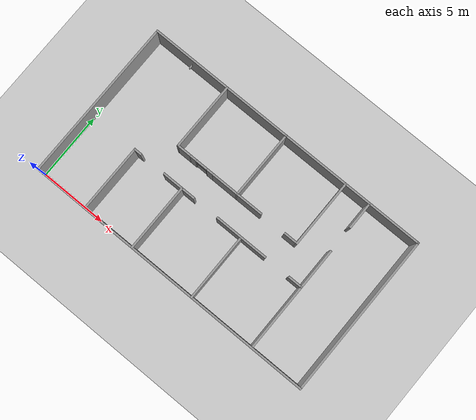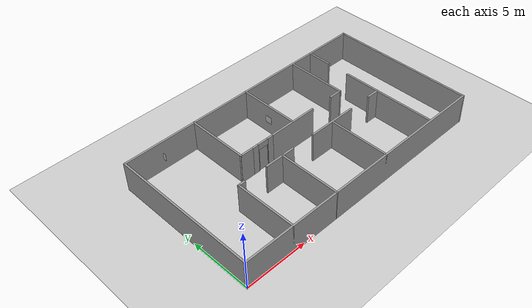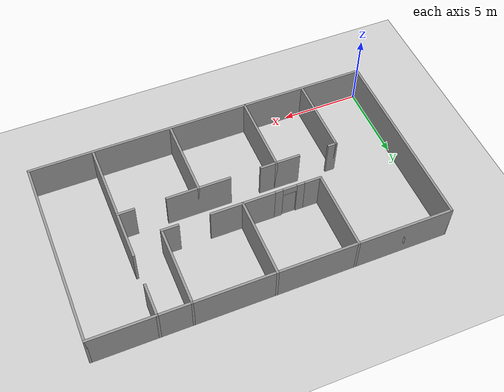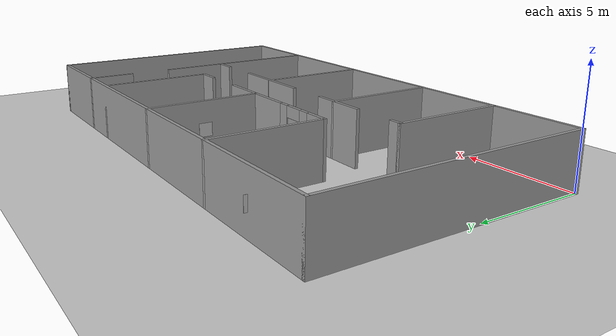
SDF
<sdf version="1.7">
 <world name="default">
  <model name="ground_plane">
   <static>1</static>
   <link name="link">
    <collision name="collision">
     <geometry><plane><normal>0 0 1</normal><size>100 100</size></plane></geometry>
     <surface><friction><ode><mu>100</mu><mu2>50</mu2></ode></friction></surface>
    </collision>
    <visual name="visual">
     <cast_shadows>0</cast_shadows>
     <geometry><plane><normal>0 0 1</normal><size>100 100</size></plane></geometry>
     <material>
      <script><uri>file://media/materials/scripts/gazebo.material</uri><name>Gazebo/Grey</name></script>
     </material>
    </visual>
   </link>
  </model>
  <model name="office">
   <pose>11 6 0 0 -0 0</pose>
   <link name="Wall_0">
    <collision name="Wall_0_Collision">
     <geometry><box><size>22.15 0.15 2.5</size></box></geometry>
     <pose>0 0 1.25 0 -0 0</pose>
    </collision>
    <visual name="Wall_0_Visual">
     <pose>0 0 1.25 0 -0 0</pose>
     <geometry><box><size>22.15 0.15 2.5</size></box></geometry>
     <material>
      <script><uri>file://media/materials/scripts/gazebo.material</uri><name>Gazebo/Grey</name></script>
      <ambient>1 1 1 1</ambient>
     </material>
     <meta><layer>0</layer></meta>
    </visual>
    <pose>-0 -6 0 0 -0 0</pose>
   </link>
   <link name="Wall_10">
    <pose>-0 -1 0 0 -0 0</pose>
    <visual name="Wall_10_Visual_0">
     <pose>-6.7625 0 1.25 0 -0 0</pose>
     <geometry><box><size>0.625 0.15 2.5</size></box></geometry>
     <material>
      <script><uri>file://media/materials/scripts/gazebo.material</uri><name>Gazebo/Grey</name></script>
      <ambient>1 1 1 1</ambient>
     </material>
     <meta><layer>0</layer></meta>
    </visual>
    <collision name="Wall_10_Collision_0">
     <geometry><box><size>0.625 0.15 2.5</size></box></geometry>
     <pose>-6.7625 0 1.25 0 -0 0</pose>
    </collision>
    <visual name="Wall_10_Visual_1">
     <pose>-3.25 0 1.25 0 -0 0</pose>
     <geometry><box><size>2.6 0.15 2.5</size></box></geometry>
     <material>
      <script><uri>file://media/materials/scripts/gazebo.material</uri><name>Gazebo/Grey</name></script>
      <ambient>1 1 1 1</ambient>
     </material>
     <meta><layer>0</layer></meta>
    </visual>
    <collision name="Wall_10_Collision_1">
     <geometry><box><size>2.6 0.15 2.5</size></box></geometry>
     <pose>-3.25 0 1.25 0 -0 0</pose>
    </collision>
    <visual name="Wall_10_Visual_2">
     <pose>2 0 1.25 0 -0 0</pose>
     <geometry><box><size>4.1 0.15 2.5</size></box></geometry>
     <material>
      <script><uri>file://media/materials/scripts/gazebo.material</uri><name>Gazebo/Grey</name></script>
      <ambient>1 1 1 1</ambient>
     </material>
     <meta><layer>0</layer></meta>
    </visual>
    <collision name="Wall_10_Collision_2">
     <geometry><box><size>4.1 0.15 2.5</size></box></geometry>
     <pose>2 0 1.25 0 -0 0</pose>
    </collision>
    <visual name="Wall_10_Visual_3">
     <pose>6.5125 0 1.25 0 -0 0</pose>
     <geometry><box><size>1.125 0.15 2.5</size></box></geometry>
     <material>
      <script><uri>file://media/materials/scripts/gazebo.material</uri><name>Gazebo/Grey</name></script>
      <ambient>1 1 1 1</ambient>
     </material>
     <meta><layer>0</layer></meta>
    </visual>
    <collision name="Wall_10_Collision_3">
     <geometry><box><size>1.125 0.15 2.5</size></box></geometry>
     <pose>6.5125 0 1.25 0 -0 0</pose>
    </collision>
   </link>
   <link name="Wall_12">
    <collision name="Wall_12_Collision">
     <geometry><box><size>5.15 0.15 2.5</size></box></geometry>
     <pose>0 0 1.25 0 -0 0</pose>
    </collision>
    <visual name="Wall_12_Visual">
     <pose>0 0 1.25 0 -0 0</pose>
     <geometry><box><size>5.15 0.15 2.5</size></box></geometry>
     <material>
      <script><uri>file://media/materials/scripts/gazebo.material</uri><name>Gazebo/Grey</name></script>
      <ambient>1 1 1 1</ambient>
     </material>
     <meta><layer>0</layer></meta>
    </visual>
    <pose>-3 -3.5 0 0 -0 1.5708</pose>
   </link>
   <link name="Wall_14">
    <collision name="Wall_14_Collision">
     <geometry><box><size>5.15 0.15 2.5</size></box></geometry>
     <pose>0 0 1.25 0 -0 0</pose>
    </collision>
    <visual name="Wall_14_Visual">
     <pose>0 0 1.25 0 -0 0</pose>
     <geometry><box><size>5.15 0.15 2.5</size></box></geometry>
     <material>
      <script><uri>file://media/materials/scripts/gazebo.material</uri><name>Gazebo/Grey</name></script>
      <ambient>1 1 1 1</ambient>
     </material>
     <meta><layer>0</layer></meta>
    </visual>
    <pose>2 -3.5 0 0 -0 1.5708</pose>
   </link>
   <link name="Wall_16">
    <pose>7 0 0 0 -0 1.5708</pose>
    <visual name="Wall_16_Visual_0">
     <pose>-2.0125 0 1.25 0 -0 0</pose>
     <geometry><box><size>8.125 0.15 2.5</size></box></geometry>
     <material>
      <script><uri>file://media/materials/scripts/gazebo.material</uri><name>Gazebo/Grey</name></script>
      <ambient>1 1 1 1</ambient>
     </material>
     <meta><layer>0</layer></meta>
    </visual>
    <collision name="Wall_16_Collision_0">
     <geometry><box><size>8.125 0.15 2.5</size></box></geometry>
     <pose>-2.0125 0 1.25 0 -0 0</pose>
    </collision>
    <visual name="Wall_16_Visual_1">
     <pose>5.0125 0 1.25 0 -0 0</pose>
     <geometry><box><size>2.125 0.15 2.5</size></box></geometry>
     <material>
      <script><uri>file://media/materials/scripts/gazebo.material</uri><name>Gazebo/Grey</name></script>
      <ambient>1 1 1 1</ambient>
     </material>
     <meta><layer>0</layer></meta>
    </visual>
    <collision name="Wall_16_Collision_1">
     <geometry><box><size>2.125 0.15 2.5</size></box></geometry>
     <pose>5.0125 0 1.25 0 -0 0</pose>
    </collision>
   </link>
   <link name="Wall_18">
    <collision name="Wall_18_Collision">
     <geometry><box><size>5.15 0.15 2.5</size></box></geometry>
     <pose>0 0 1.25 0 -0 0</pose>
    </collision>
    <visual name="Wall_18_Visual">
     <pose>0 0 1.25 0 -0 0</pose>
     <geometry><box><size>5.15 0.15 2.5</size></box></geometry>
     <material>
      <script><uri>file://media/materials/scripts/gazebo.material</uri><name>Gazebo/Grey</name></script>
      <ambient>1 1 1 1</ambient>
     </material>
     <meta><layer>0</layer></meta>
    </visual>
    <pose>-5 3.5 0 0 -0 1.5708</pose>
   </link>
   <link name="Wall_2">
    <collision name="Wall_2_Collision">
     <geometry><box><size>12.15 0.15 2.5</size></box></geometry>
     <pose>0 0 1.25 0 -0 0</pose>
    </collision>
    <visual name="Wall_2_Visual">
     <pose>0 0 1.25 0 -0 0</pose>
     <geometry><box><size>12.15 0.15 2.5</size></box></geometry>
     <material>
      <script><uri>file://media/materials/scripts/gazebo.material</uri><name>Gazebo/Grey</name></script>
      <ambient>1 1 1 1</ambient>
     </material>
     <meta><layer>0</layer></meta>
    </visual>
    <pose>-11 0 0 0 -0 1.5708</pose>
   </link>
   <link name="Wall_20">
    <pose>-0 1 0 0 -0 0</pose>
    <visual name="Wall_20_Visual_0">
     <pose>-4.5125 0 1.25 0 -0 0</pose>
     <geometry><box><size>1.125 0.15 2.5</size></box></geometry>
     <material>
      <script><uri>file://media/materials/scripts/gazebo.material</uri><name>Gazebo/Grey</name></script>
      <ambient>1 1 1 1</ambient>
     </material>
     <meta><layer>0</layer></meta>
    </visual>
    <collision name="Wall_20_Collision_0">
     <geometry><box><size>1.125 0.15 2.5</size></box></geometry>
     <pose>-4.5125 0 1.25 0 -0 0</pose>
    </collision>
    <visual name="Wall_20_Visual_1">
     <pose>-0 0 1.25 0 -0 0</pose>
     <geometry><box><size>4.1 0.15 2.5</size></box></geometry>
     <material>
      <script><uri>file://media/materials/scripts/gazebo.material</uri><name>Gazebo/Grey</name></script>
      <ambient>1 1 1 1</ambient>
     </material>
     <meta><layer>0</layer></meta>
    </visual>
    <collision name="Wall_20_Collision_1">
     <geometry><box><size>4.1 0.15 2.5</size></box></geometry>
     <pose>-0 0 1.25 0 -0 0</pose>
    </collision>
    <visual name="Wall_20_Visual_2">
     <pose>4.5125 0 1.25 0 -0 0</pose>
     <geometry><box><size>1.125 0.15 2.5</size></box></geometry>
     <material>
      <script><uri>file://media/materials/scripts/gazebo.material</uri><name>Gazebo/Grey</name></script>
      <ambient>1 1 1 1</ambient>
     </material>
     <meta><layer>0</layer></meta>
    </visual>
    <collision name="Wall_20_Collision_2">
     <geometry><box><size>1.125 0.15 2.5</size></box></geometry>
     <pose>4.5125 0 1.25 0 -0 0</pose>
    </collision>
   </link>
   <link name="Wall_22">
    <collision name="Wall_22_Collision">
     <geometry><box><size>5.15 0.15 2.5</size></box></geometry>
     <pose>0 0 1.25 0 -0 0</pose>
    </collision>
    <visual name="Wall_22_Visual">
     <pose>0 0 1.25 0 -0 0</pose>
     <geometry><box><size>5.15 0.15 2.5</size></box></geometry>
     <material>
      <script><uri>file://media/materials/scripts/gazebo.material</uri><name>Gazebo/Grey</name></script>
      <ambient>1 1 1 1</ambient>
     </material>
     <meta><layer>0</layer></meta>
    </visual>
    <pose>5 3.5 0 0 -0 1.5708</pose>
   </link>
   <link name="Wall_24">
    <collision name="Wall_24_Collision">
     <geometry><box><size>5.15 0.15 2.5</size></box></geometry>
     <pose>0 0 1.25 0 -0 0</pose>
    </collision>
    <visual name="Wall_24_Visual">
     <pose>0 0 1.25 0 -0 0</pose>
     <geometry><box><size>5.15 0.15 2.5</size></box></geometry>
     <material>
      <script><uri>file://media/materials/scripts/gazebo.material</uri><name>Gazebo/Grey</name></script>
      <ambient>1 1 1 1</ambient>
     </material>
     <meta><layer>0</layer></meta>
    </visual>
    <pose>-0 3.5 0 0 -0 1.5708</pose>
   </link>
   <link name="Wall_4">
    <collision name="Wall_4_Collision">
     <geometry><box><size>22.15 0.15 2.5</size></box></geometry>
     <pose>0 0 1.25 0 -0 0</pose>
    </collision>
    <visual name="Wall_4_Visual">
     <pose>0 0 1.25 0 -0 0</pose>
     <geometry><box><size>22.15 0.15 2.5</size></box></geometry>
     <material>
      <script><uri>file://media/materials/scripts/gazebo.material</uri><name>Gazebo/Grey</name></script>
      <ambient>1 1 1 1</ambient>
     </material>
     <meta><layer>0</layer></meta>
    </visual>
    <pose>-0 6 0 0 -0 0</pose>
   </link>
   <link name="Wall_6">
    <collision name="Wall_6_Collision">
     <geometry><box><size>12.15 0.15 2.5</size></box></geometry>
     <pose>0 0 1.25 0 -0 0</pose>
    </collision>
    <visual name="Wall_6_Visual">
     <pose>0 0 1.25 0 -0 0</pose>
     <geometry><box><size>12.15 0.15 2.5</size></box></geometry>
     <material>
      <script><uri>file://media/materials/scripts/gazebo.material</uri><name>Gazebo/Grey</name></script>
      <ambient>1 1 1 1</ambient>
     </material>
     <meta><layer>0</layer></meta>
    </visual>
    <pose>11 0 0 0 -0 1.5708</pose>
   </link>
   <link name="Wall_8">
    <collision name="Wall_8_Collision">
     <geometry><box><size>5.15 0.15 2.5</size></box></geometry>
     <pose>0 0 1.25 0 -0 0</pose>
    </collision>
    <visual name="Wall_8_Visual">
     <pose>0 0 1.25 0 -0 0</pose>
     <geometry><box><size>5.15 0.15 2.5</size></box></geometry>
     <material>
      <script><uri>file://media/materials/scripts/gazebo.material</uri><name>Gazebo/Grey</name></script>
      <ambient>1 1 1 1</ambient>
     </material>
     <meta><layer>0</layer></meta>
    </visual>
    <pose>-7 -3.5 0 0 -0 1.5708</pose>
   </link>
   <static>1</static>
  </model>
  <model name="wall_with_door_no_gap">
   <link name="Wall">
    <pose>0 0 0 0 -4e-06 0</pose>
    <inertial>
     <inertia><ixx>1</ixx><ixy>0</ixy><ixz>0</ixz><iyy>1</iyy><iyz>0</iyz><izz>1</izz></inertia>
     <mass>1</mass>
    </inertial>
    <visual name="Wall_Visual_4">
     <pose>0.425 -0.055 1 0 -0 0</pose>
     <geometry><box><size>0.05 0.04 2</size></box></geometry>
     <material>
      <script><uri>file://media/materials/scripts/gazebo.material</uri><name>Gazebo/Grey</name></script>
      <ambient>1 1 1 1</ambient>
      <shader type="pixel"><normal_map>__default__</normal_map></shader>
      <emissive>0 0 0 1</emissive>
      <diffuse>0.7 0.7 0.7 1</diffuse>
      <specular>0.01 0.01 0.01 1</specular>
     </material>
     <meta><layer>0</layer></meta>
    </visual>
    <visual name="Wall_Visual_0">
     <pose>-0.7 0 1.25 0 -0 0</pose>
     <geometry><box><size>0.5 0.15 2.5</size></box></geometry>
     <material>
      <script><uri>file://media/materials/scripts/gazebo.material</uri><name>Gazebo/Grey</name></script>
      <ambient>1 1 1 1</ambient>
      <shader type="pixel"><normal_map>__default__</normal_map></shader>
      <emissive>0 0 0 1</emissive>
      <diffuse>0.7 0.7 0.7 1</diffuse>
      <specular>0.01 0.01 0.01 1</specular>
     </material>
     <meta><layer>0</layer></meta>
    </visual>
    <visual name="Wall_visual_3">
     <pose>-0.425 -0.055 1 0 -0 0</pose>
     <geometry><box><size>0.05 0.04 2</size></box></geometry>
     <material>
      <script><uri>file://media/materials/scripts/gazebo.material</uri><name>Gazebo/Grey</name></script>
      <ambient>1 1 1 1</ambient>
      <shader type="pixel"><normal_map>__default__</normal_map></shader>
      <emissive>0 0 0 1</emissive>
      <diffuse>0.7 0.7 0.7 1</diffuse>
      <specular>0.01 0.01 0.01 1</specular>
     </material>
     <meta><layer>0</layer></meta>
    </visual>
    <visual name="Wall_Visual_1">
     <pose>0.7 0 1.25 0 -0 0</pose>
     <geometry><box><size>0.5 0.15 2.5</size></box></geometry>
     <material>
      <script><uri>file://media/materials/scripts/gazebo.material</uri><name>Gazebo/Grey</name></script>
      <ambient>1 1 1 1</ambient>
      <shader type="pixel"><normal_map>__default__</normal_map></shader>
      <emissive>0 0 0 1</emissive>
      <diffuse>0.7 0.7 0.7 1</diffuse>
      <specular>0.01 0.01 0.01 1</specular>
     </material>
     <meta><layer>0</layer></meta>
    </visual>
    <visual name="Wall_Visual_2">
     <pose>0 0 2.25 0 -0 0</pose>
     <geometry><box><size>0.9 0.15 0.5</size></box></geometry>
     <material>
      <script><uri>file://media/materials/scripts/gazebo.material</uri><name>Gazebo/Grey</name></script>
      <ambient>1 1 1 1</ambient>
      <shader type="pixel"><normal_map>__default__</normal_map></shader>
      <emissive>0 0 0 1</emissive>
      <diffuse>0.7 0.7 0.7 1</diffuse>
      <specular>0.01 0.01 0.01 1</specular>
     </material>
     <meta><layer>0</layer></meta>
    </visual>
    <collision name="Wall_Collision_3">
     <pose>-0.425 -0.055 1 0 -0 0</pose>
     <geometry><box><size>0.05 0.04 2</size></box></geometry>
     <surface>
      <friction>
       <ode><mu>1</mu><mu2>1</mu2><fdir1>0 0 0</fdir1><slip1>0</slip1><slip2>0</slip2></ode>
       <torsional>
        <coefficient>1</coefficient>
        <patch_radius>0</patch_radius>
        <surface_radius>0</surface_radius>
        <use_patch_radius>1</use_patch_radius>
        <ode><slip>0</slip></ode>
       </torsional>
      </friction>
      <bounce><restitution_coefficient>0</restitution_coefficient><threshold>1e+06</threshold></bounce>
      <contact>
       <collide_without_contact>0</collide_without_contact>
       <collide_without_contact_bitmask>1</collide_without_contact_bitmask>
       <collide_bitmask>1</collide_bitmask>
       <ode>
        <soft_cfm>0</soft_cfm>
        <soft_erp>0.2</soft_erp>
        <kp>1e+13</kp>
        <kd>1</kd>
        <max_vel>0.01</max_vel>
        <min_depth>0</min_depth>
       </ode>
       <bullet>
        <split_impulse>1</split_impulse>
        <split_impulse_penetration_threshold>-0.01</split_impulse_penetration_threshold>
        <soft_cfm>0</soft_cfm>
        <soft_erp>0.2</soft_erp>
        <kp>1e+13</kp>
        <kd>1</kd>
       </bullet>
      </contact>
     </surface>
    </collision>
    <collision name="Wall_Collision_4">
     <pose>0.425 -0.055 1 0 -0 0</pose>
     <geometry><box><size>0.05 0.04 2</size></box></geometry>
     <surface>
      <friction>
       <ode><mu>1</mu><mu2>1</mu2><fdir1>0 0 0</fdir1><slip1>0</slip1><slip2>0</slip2></ode>
       <torsional>
        <coefficient>1</coefficient>
        <patch_radius>0</patch_radius>
        <surface_radius>0</surface_radius>
        <use_patch_radius>1</use_patch_radius>
        <ode><slip>0</slip></ode>
       </torsional>
      </friction>
      <bounce><restitution_coefficient>0</restitution_coefficient><threshold>1e+06</threshold></bounce>
      <contact>
       <collide_without_contact>0</collide_without_contact>
       <collide_without_contact_bitmask>1</collide_without_contact_bitmask>
       <collide_bitmask>1</collide_bitmask>
       <ode>
        <soft_cfm>0</soft_cfm>
        <soft_erp>0.2</soft_erp>
        <kp>1e+13</kp>
        <kd>1</kd>
        <max_vel>0.01</max_vel>
        <min_depth>0</min_depth>
       </ode>
       <bullet>
        <split_impulse>1</split_impulse>
        <split_impulse_penetration_threshold>-0.01</split_impulse_penetration_threshold>
        <soft_cfm>0</soft_cfm>
        <soft_erp>0.2</soft_erp>
        <kp>1e+13</kp>
        <kd>1</kd>
       </bullet>
      </contact>
     </surface>
    </collision>
    <collision name="Wall_Collision_1">
     <pose>0.7 0 1.25 0 -0 0</pose>
     <geometry><box><size>0.5 0.15 2.5</size></box></geometry>
     <surface>
      <friction>
       <ode><mu>1</mu><mu2>1</mu2><fdir1>0 0 0</fdir1><slip1>0</slip1><slip2>0</slip2></ode>
       <torsional>
        <coefficient>1</coefficient>
        <patch_radius>0</patch_radius>
        <surface_radius>0</surface_radius>
        <use_patch_radius>1</use_patch_radius>
        <ode><slip>0</slip></ode>
       </torsional>
      </friction>
      <bounce><restitution_coefficient>0</restitution_coefficient><threshold>1e+06</threshold></bounce>
      <contact>
       <collide_without_contact>0</collide_without_contact>
       <collide_without_contact_bitmask>1</collide_without_contact_bitmask>
       <collide_bitmask>1</collide_bitmask>
       <ode>
        <soft_cfm>0</soft_cfm>
        <soft_erp>0.2</soft_erp>
        <kp>1e+13</kp>
        <kd>1</kd>
        <max_vel>0.01</max_vel>
        <min_depth>0</min_depth>
       </ode>
       <bullet>
        <split_impulse>1</split_impulse>
        <split_impulse_penetration_threshold>-0.01</split_impulse_penetration_threshold>
        <soft_cfm>0</soft_cfm>
        <soft_erp>0.2</soft_erp>
        <kp>1e+13</kp>
        <kd>1</kd>
       </bullet>
      </contact>
     </surface>
    </collision>
    <collision name="Wall_Collision_0">
     <pose>-0.7 0 1.25 0 -0 0</pose>
     <geometry><box><size>0.5 0.15 2.5</size></box></geometry>
     <surface>
      <friction>
       <ode><mu>1</mu><mu2>1</mu2><fdir1>0 0 0</fdir1><slip1>0</slip1><slip2>0</slip2></ode>
       <torsional>
        <coefficient>1</coefficient>
        <patch_radius>0</patch_radius>
        <surface_radius>0</surface_radius>
        <use_patch_radius>1</use_patch_radius>
        <ode><slip>0</slip></ode>
       </torsional>
      </friction>
      <bounce><restitution_coefficient>0</restitution_coefficient><threshold>1e+06</threshold></bounce>
      <contact>
       <collide_without_contact>0</collide_without_contact>
       <collide_without_contact_bitmask>1</collide_without_contact_bitmask>
       <collide_bitmask>1</collide_bitmask>
       <ode>
        <soft_cfm>0</soft_cfm>
        <soft_erp>0.2</soft_erp>
        <kp>1e+13</kp>
        <kd>1</kd>
        <max_vel>0.01</max_vel>
        <min_depth>0</min_depth>
       </ode>
       <bullet>
        <split_impulse>1</split_impulse>
        <split_impulse_penetration_threshold>-0.01</split_impulse_penetration_threshold>
        <soft_cfm>0</soft_cfm>
        <soft_erp>0.2</soft_erp>
        <kp>1e+13</kp>
        <kd>1</kd>
       </bullet>
      </contact>
     </surface>
    </collision>
    <collision name="Wall_Collision_2">
     <pose>0 0 2.25 0 -0 0</pose>
     <geometry><box><size>0.9 0.15 0.5</size></box></geometry>
     <surface>
      <friction>
       <ode><mu>1</mu><mu2>1</mu2><fdir1>0 0 0</fdir1><slip1>0</slip1><slip2>0</slip2></ode>
       <torsional>
        <coefficient>1</coefficient>
        <patch_radius>0</patch_radius>
        <surface_radius>0</surface_radius>
        <use_patch_radius>1</use_patch_radius>
        <ode><slip>0</slip></ode>
       </torsional>
      </friction>
      <bounce><restitution_coefficient>0</restitution_coefficient><threshold>1e+06</threshold></bounce>
      <contact>
       <collide_without_contact>0</collide_without_contact>
       <collide_without_contact_bitmask>1</collide_without_contact_bitmask>
       <collide_bitmask>1</collide_bitmask>
       <ode>
        <soft_cfm>0</soft_cfm>
        <soft_erp>0.2</soft_erp>
        <kp>1e+13</kp>
        <kd>1</kd>
        <max_vel>0.01</max_vel>
        <min_depth>0</min_depth>
       </ode>
       <bullet>
        <split_impulse>1</split_impulse>
        <split_impulse_penetration_threshold>-0.01</split_impulse_penetration_threshold>
        <soft_cfm>0</soft_cfm>
        <soft_erp>0.2</soft_erp>
        <kp>1e+13</kp>
        <kd>1</kd>
       </bullet>
      </contact>
     </surface>
    </collision>
    <static>1</static>
   </link>
   <link name="door">
    <inertial>
     <mass>1</mass>
     <inertia>
      <ixx>0.166667</ixx>
      <ixy>0</ixy>
      <ixz>0</ixz>
      <iyy>0.166667</iyy>
      <iyz>0</iyz>
      <izz>0.166667</izz>
     </inertia>
    </inertial>
    <pose>-0 -0 1 0 -4e-06 0</pose>
    <visual name="visual">
     <pose>0.01 0 0 0 -0 0</pose>
     <geometry><box><size>0.86 0.04 2</size></box></geometry>
     <material>
      <lighting>1</lighting>
      <script><uri>file://media/materials/scripts/gazebo.material</uri><name>Gazebo/Grey</name></script>
      <shader type="pixel"><normal_map>__default__</normal_map></shader>
      <ambient>0.3 0.3 0.3 1</ambient>
      <diffuse>0.7 0.7 0.7 1</diffuse>
      <specular>0.01 0.01 0.01 1</specular>
      <emissive>0 0 0 1</emissive>
     </material>
    </visual>
    <collision name="collision">
     <pose>0.01 0 0 0 -0 0</pose>
     <geometry><box><size>0.84 0.04 2</size></box></geometry>
     <surface>
      <friction>
       <ode><mu>1</mu><mu2>1</mu2><fdir1>0 0 0</fdir1><slip1>0</slip1><slip2>0</slip2></ode>
       <torsional>
        <coefficient>1</coefficient>
        <patch_radius>0</patch_radius>
        <surface_radius>0</surface_radius>
        <use_patch_radius>1</use_patch_radius>
        <ode><slip>0</slip></ode>
       </torsional>
      </friction>
      <bounce><restitution_coefficient>0</restitution_coefficient><threshold>1e+06</threshold></bounce>
      <contact>
       <collide_without_contact>0</collide_without_contact>
       <collide_without_contact_bitmask>1</collide_without_contact_bitmask>
       <collide_bitmask>1</collide_bitmask>
       <ode>
        <soft_cfm>0</soft_cfm>
        <soft_erp>0.2</soft_erp>
        <kp>1e+13</kp>
        <kd>1</kd>
        <max_vel>0.01</max_vel>
        <min_depth>0</min_depth>
       </ode>
       <bullet>
        <split_impulse>1</split_impulse>
        <split_impulse_penetration_threshold>-0.01</split_impulse_penetration_threshold>
        <soft_cfm>0</soft_cfm>
        <soft_erp>0.2</soft_erp>
        <kp>1e+13</kp>
        <kd>1</kd>
       </bullet>
      </contact>
     </surface>
    </collision>
    <static>0</static>
   </link>
   <joint name="Door_JOINT" type="revolute">
    <parent>Wall</parent>
    <child>door</child>
    <pose>-0.43 0 0 0 -0 0</pose>
    <axis>
     <xyz>0 0 1</xyz>
     <limit><lower>0</lower><upper>1.57</upper><effort>-1</effort><velocity>-1</velocity></limit>
     <dynamics>
      <spring_reference>0</spring_reference>
      <spring_stiffness>0</spring_stiffness>
      <damping>0</damping>
      <friction>0</friction>
     </dynamics>
    </axis>
    <physics>
     <ode><limit><cfm>0</cfm><erp>0.2</erp></limit><suspension><cfm>0</cfm><erp>0.2</erp></suspension></ode>
    </physics>
   </joint>
   <joint name="WALL_FIXED" type="fixed"><parent>world</parent><child>Wall</child></joint>
   <plugin name="wall_and_door_plugin" filename="libDoorControlPlugin.so">
    <initial_position>0</initial_position>
    <switch_flag>true</switch_flag>
    <switch_duration>15</switch_duration>
   </plugin>
   <static>0</static>
   <pose>8 7 0 0 -0 0</pose>
  </model>
  <model name="static_apriltag_0">
   <link name="link">
    <pose>0 0 0 0 1.57 0</pose>
    <inertial>
     <mass>0.39</mass>
     <inertia><ixx>0.00058</ixx><ixy>0</ixy><ixz>0</ixz><iyy>0.00058</iyy><iyz>0</iyz><izz>0.00019</izz></inertia>
    </inertial>
    <collision name="collision"><geometry><box><size>0.6 0.6 0.01</size></box></geometry></collision>
    <visual name="visual">
     <geometry><box><size>0.6 0.6 0.01</size></box></geometry>
     <material>
      <script>
       <uri>model://apriltag/materials/scripts</uri>
       <uri>model://apriltag/materials/textures</uri>
       <name>apriltag/Diffuse0</name>
      </script>
     </material>
    </visual>
    <gravity>0</gravity>
   </link>
   <pose>3 11.925 1.25 0 -0 0</pose>
   <static>1</static>
   <pose>1.90787 0.108649 0 0 -0 0</pose>
  </model>
  <model name="static_apriltag_1">
   <link name="link">
    <pose>0 0 0 0 1.57 0</pose>
    <inertial>
     <mass>0.39</mass>
     <inertia><ixx>0.00058</ixx><ixy>0</ixy><ixz>0</ixz><iyy>0.00058</iyy><iyz>0</iyz><izz>0.00019</izz></inertia>
    </inertial>
    <collision name="collision"><geometry><box><size>0.6 0.6 0.01</size></box></geometry></collision>
    <visual name="visual">
     <geometry><box><size>0.6 0.6 0.01</size></box></geometry>
     <material>
      <script>
       <uri>model://apriltag/materials/scripts</uri>
       <uri>model://apriltag/materials/textures</uri>
       <name>apriltag/Diffuse1</name>
      </script>
     </material>
    </visual>
    <gravity>0</gravity>
   </link>
   <pose>10.925 9.5 1.25 0 -0 0</pose>
   <static>1</static>
   <pose>1.36256 0.459264 0 0 -0 0</pose>
  </model>
 </world>
</sdf>
